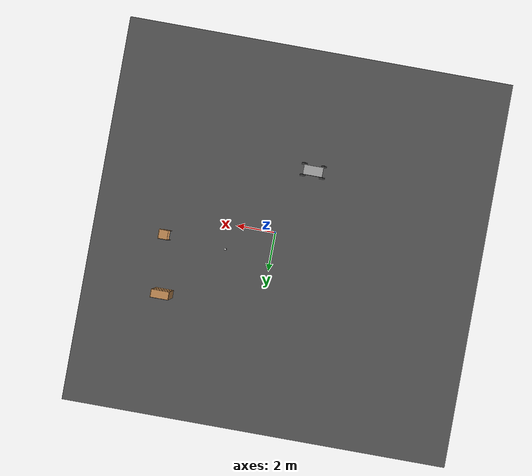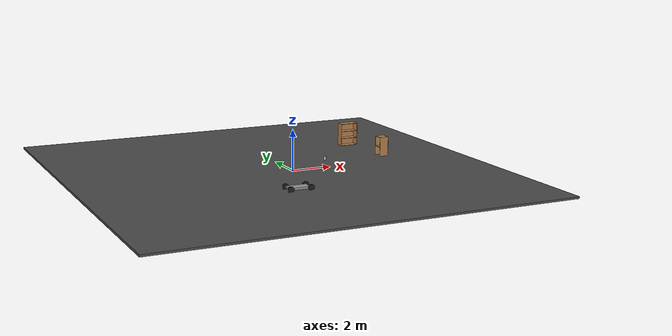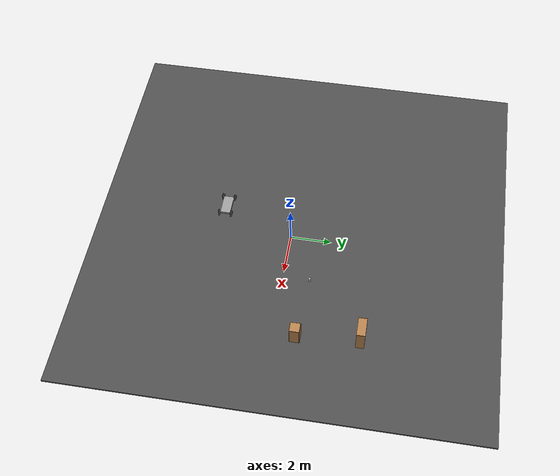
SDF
<sdf version="1.5">
 <world name="default">
  <physics type="ode">
   <max_step_size>0.0002</max_step_size>
   <real_time_factor>1</real_time_factor>
   <real_time_update_rate>5000</real_time_update_rate>
   <gravity>0 0 -9.81</gravity>
   <ode>
    <solver><type>quick</type><iters>50</iters><sor>1.3</sor></solver>
    <constraints>
     <cfm>0.0</cfm>
     <erp>0.2</erp>
     <contact_max_correcting_vel>10.0</contact_max_correcting_vel>
     <contact_surface_layer>0.001</contact_surface_layer>
    </constraints>
   </ode>
  </physics>
  <scene><sky><clouds><speed>12</speed></clouds></sky></scene>
  <include><uri>model://sun</uri></include>
  <model name="asphalt_plane">
   <static>1</static>
   <link name="link">
    <collision name="collision"><geometry><box><size>20 20 0.1</size></box></geometry></collision>
    <visual name="visual">
     <cast_shadows>0</cast_shadows>
     <geometry><box><size>20 20 0.1</size></box></geometry>
     <material>
      <script>
       <uri>model://asphalt_plane/materials/scripts</uri>
       <uri>model://asphalt_plane/materials/textures</uri>
       <name>vrc/asphalt</name>
      </script>
     </material>
    </visual>
   </link>
   <pose>-0.699775 0.359474 0 0 -0 0</pose>
  </model>
  <model name="beer">
   <link name="link">
    <pose>0 0 0.115 0 -0 0</pose>
    <inertial>
     <mass>0.39</mass>
     <inertia><ixx>0.00058</ixx><ixy>0</ixy><ixz>0</ixz><iyy>0.00058</iyy><iyz>0</iyz><izz>0.00019</izz></inertia>
    </inertial>
    <collision name="collision">
     <geometry><cylinder><radius>0.055</radius><length>0.23</length></cylinder></geometry>
    </collision>
    <visual name="visual">
     <geometry><cylinder><radius>0.055</radius><length>0.23</length></cylinder></geometry>
     <material>
      <script>
       <uri>model://beer/materials/scripts</uri>
       <uri>model://beer/materials/textures</uri>
       <name>Beer/Diffuse</name>
      </script>
     </material>
    </visual>
   </link>
   <pose>2.36586 1.28775 0 0 -0 0</pose>
  </model>
  <model name="bookshelf">
   <static>1</static>
   <link name="link">
    <inertial><mass>1</mass></inertial>
    <collision name="back">
     <pose>0 0.005 0.6 0 -0 0</pose>
     <geometry><box><size>0.9 0.01 1.2</size></box></geometry>
    </collision>
    <visual name="visual1">
     <pose>0 0.005 0.6 0 -0 0</pose>
     <geometry><box><size>0.9 0.01 1.2</size></box></geometry>
     <material>
      <script><uri>file://media/materials/scripts/gazebo.material</uri><name>Gazebo/Wood</name></script>
     </material>
    </visual>
    <collision name="left_side">
     <pose>0.45 -0.195 0.6 0 -0 0</pose>
     <geometry><box><size>0.02 0.4 1.2</size></box></geometry>
    </collision>
    <visual name="visual2">
     <pose>0.45 -0.195 0.6 0 -0 0</pose>
     <geometry><box><size>0.02 0.4 1.2</size></box></geometry>
     <material>
      <script><uri>file://media/materials/scripts/gazebo.material</uri><name>Gazebo/Wood</name></script>
     </material>
    </visual>
    <collision name="right_side">
     <pose>-0.45 -0.195 0.6 0 -0 0</pose>
     <geometry><box><size>0.02 0.4 1.2</size></box></geometry>
    </collision>
    <visual name="visual3">
     <pose>-0.45 -0.195 0.6 0 -0 0</pose>
     <geometry><box><size>0.02 0.4 1.2</size></box></geometry>
     <material>
      <script><uri>file://media/materials/scripts/gazebo.material</uri><name>Gazebo/Wood</name></script>
     </material>
    </visual>
    <collision name="bottom">
     <pose>0 -0.195 0.03 0 -0 0</pose>
     <geometry><box><size>0.88 0.4 0.06</size></box></geometry>
    </collision>
    <visual name="visual4">
     <pose>0 -0.195 0.03 0 -0 0</pose>
     <geometry><box><size>0.88 0.4 0.06</size></box></geometry>
     <material>
      <script><uri>file://media/materials/scripts/gazebo.material</uri><name>Gazebo/Wood</name></script>
     </material>
    </visual>
    <collision name="top">
     <pose>0 -0.195 1.19 0 -0 0</pose>
     <geometry><box><size>0.88 0.4 0.02</size></box></geometry>
    </collision>
    <visual name="visual5">
     <pose>0 -0.195 1.19 0 -0 0</pose>
     <geometry><box><size>0.88 0.4 0.02</size></box></geometry>
     <material>
      <script><uri>file://media/materials/scripts/gazebo.material</uri><name>Gazebo/Wood</name></script>
     </material>
    </visual>
    <collision name="low_shelf">
     <pose>0 -0.195 0.43 0 -0 0</pose>
     <geometry><box><size>0.88 0.4 0.02</size></box></geometry>
    </collision>
    <visual name="visual6">
     <pose>0 -0.195 0.43 0 -0 0</pose>
     <geometry><box><size>0.88 0.4 0.02</size></box></geometry>
     <material>
      <script><uri>file://media/materials/scripts/gazebo.material</uri><name>Gazebo/Wood</name></script>
     </material>
    </visual>
    <collision name="high_shelf">
     <pose>0 -0.195 0.8 0 -0 0</pose>
     <geometry><box><size>0.88 0.4 0.02</size></box></geometry>
    </collision>
    <visual name="visual7">
     <pose>0 -0.195 0.8 0 -0 0</pose>
     <geometry><box><size>0.88 0.4 0.02</size></box></geometry>
     <material>
      <script><uri>file://media/materials/scripts/gazebo.material</uri><name>Gazebo/Wood</name></script>
     </material>
    </visual>
   </link>
   <pose>5.07534 4.23526 0 0 -0 0</pose>
  </model>
  <model name="cabinet">
   <static>1</static>
   <link name="cabinet_bottom_plate">
    <inertial>
     <pose>0 0 -1 0 -0 0</pose>
     <inertia><ixx>2.05</ixx><ixy>0</ixy><ixz>0</ixz><iyy>2.05</iyy><iyz>0</iyz><izz>2.05</izz></inertia>
     <mass>25</mass>
    </inertial>
    <collision name="cabinet_bottom_plate_geom">
     <pose>0 0 0.01 0 -0 0</pose>
     <geometry><box><size>0.45 0.45 0.02</size></box></geometry>
    </collision>
    <visual name="cabinet_bottom_plate_geom_visual">
     <pose>0 0 0.01 0 -0 0</pose>
     <geometry><box><size>0.45 0.45 0.02</size></box></geometry>
     <material>
      <script><uri>file://media/materials/scripts/gazebo.material</uri><name>Gazebo/Wood</name></script>
     </material>
    </visual>
    <collision name="cabinet_bottom_plate_geom_cabinet_back_plate">
     <pose>0.235 0 0.51 0 -0 0</pose>
     <geometry><box><size>0.02 0.45 1.02</size></box></geometry>
    </collision>
    <visual name="cabinet_bottom_plate_geom_cabinet_back_plate_visual">
     <pose>0.235 0 0.51 0 -0 0</pose>
     <geometry><box><size>0.02 0.45 1.02</size></box></geometry>
     <material>
      <script><uri>file://media/materials/scripts/gazebo.material</uri><name>Gazebo/Wood</name></script>
     </material>
    </visual>
    <collision name="cabinet_bottom_plate_geom_cabinet_left_plate">
     <pose>0 0.235 0.51 0 -0 0</pose>
     <geometry><box><size>0.45 0.02 1.02</size></box></geometry>
    </collision>
    <visual name="cabinet_bottom_plate_geom_cabinet_left_plate_visual">
     <pose>0 0.235 0.51 0 -0 0</pose>
     <geometry><box><size>0.45 0.02 1.02</size></box></geometry>
     <material>
      <script><uri>file://media/materials/scripts/gazebo.material</uri><name>Gazebo/Wood</name></script>
     </material>
    </visual>
    <collision name="cabinet_bottom_plate_geom_cabinet_middle_plate">
     <pose>0 0 0.51 0 -0 0</pose>
     <geometry><box><size>0.45 0.45 0.02</size></box></geometry>
    </collision>
    <visual name="cabinet_bottom_plate_geom_cabinet_middle_plate_visual">
     <pose>0 0 0.51 0 -0 0</pose>
     <geometry><box><size>0.45 0.45 0.02</size></box></geometry>
     <material>
      <script><uri>file://media/materials/scripts/gazebo.material</uri><name>Gazebo/Wood</name></script>
     </material>
    </visual>
    <collision name="cabinet_bottom_plate_geom_cabinet_right_plate">
     <pose>0 -0.235 0.51 0 -0 0</pose>
     <geometry><box><size>0.45 0.02 1.02</size></box></geometry>
    </collision>
    <visual name="cabinet_bottom_plate_geom_cabinet_right_plate_visual">
     <pose>0 -0.235 0.51 0 -0 0</pose>
     <geometry><box><size>0.45 0.02 1.02</size></box></geometry>
     <material>
      <script><uri>file://media/materials/scripts/gazebo.material</uri><name>Gazebo/Wood</name></script>
     </material>
    </visual>
    <collision name="cabinet_bottom_plate_geom_cabinet_top_plate">
     <pose>0 0 1.01 0 -0 0</pose>
     <geometry><box><size>0.45 0.45 0.02</size></box></geometry>
    </collision>
    <visual name="cabinet_bottom_plate_geom_cabinet_top_plate_visual">
     <pose>0 0 1.01 0 -0 0</pose>
     <geometry><box><size>0.45 0.45 0.02</size></box></geometry>
     <material>
      <script><uri>file://media/materials/scripts/gazebo.material</uri><name>Gazebo/Wood</name></script>
     </material>
    </visual>
   </link>
   <pose>5.46205 1.0817 0 0 -0 0</pose>
  </model>
  <model name="cart_front_steer">
   <link name="chassis">
    <pose>0 0 0.15 0 -0 0</pose>
    <inertial>
     <pose>0.1 0 0 0 -0 0</pose>
     <mass>10</mass>
     <inertia>
      <ixx>0.216667</ixx>
      <iyy>0.841667</iyy>
      <izz>1.04167</izz>
      <ixy>0</ixy>
      <ixz>0</ixz>
      <iyz>0</iyz>
     </inertia>
    </inertial>
    <collision name="collision"><geometry><box><size>1 0.5 0.1</size></box></geometry></collision>
    <visual name="visual">
     <geometry><box><size>1 0.5 0.1</size></box></geometry>
     <material>
      <script><uri>file://media/materials/scripts/gazebo.material</uri><name>Gazebo/Grey</name></script>
     </material>
    </visual>
   </link>
   <link name="wheel_front_left">
    <pose>0.5 0.298 0.15 -1.5708 -0.087266 0</pose>
    <inertial>
     <mass>0.5</mass>
     <inertia>
      <ixx>0.00307917</ixx>
      <iyy>0.00307917</iyy>
      <izz>0.005625</izz>
      <ixy>0</ixy>
      <ixz>0</ixz>
      <iyz>0</iyz>
     </inertia>
    </inertial>
    <collision name="collision">
     <geometry><cylinder><radius>0.15</radius><length>0.08</length></cylinder></geometry>
    </collision>
    <visual name="visual">
     <geometry><cylinder><radius>0.15</radius><length>0.08</length></cylinder></geometry>
     <material>
      <script><uri>file://media/materials/scripts/gazebo.material</uri><name>Gazebo/Black</name></script>
     </material>
    </visual>
   </link>
   <joint name="wheel_front_left_steer_spin" type="universal">
    <parent>chassis</parent>
    <child>wheel_front_left</child>
    <axis>
     <xyz>0 -1 0</xyz>
     <limit><lower>-0.610865</lower><upper>0.610865</upper></limit>
     <dynamics><spring_reference>0</spring_reference><spring_stiffness>0</spring_stiffness></dynamics>
    </axis>
    <axis2>
     <xyz>0 0 1</xyz>
     <limit><upper>1e+16</upper><lower>-1e+16</lower></limit>
     <dynamics><spring_reference>0</spring_reference><spring_stiffness>0</spring_stiffness></dynamics>
    </axis2>
   </joint>
   <link name="wheel_front_right">
    <pose>0.5 -0.298 0.15 -1.5708 -0.087266 0</pose>
    <inertial>
     <mass>0.5</mass>
     <inertia>
      <ixx>0.00307917</ixx>
      <iyy>0.00307917</iyy>
      <izz>0.005625</izz>
      <ixy>0</ixy>
      <ixz>0</ixz>
      <iyz>0</iyz>
     </inertia>
    </inertial>
    <collision name="collision">
     <geometry><cylinder><radius>0.15</radius><length>0.08</length></cylinder></geometry>
    </collision>
    <visual name="visual">
     <geometry><cylinder><radius>0.15</radius><length>0.08</length></cylinder></geometry>
     <material>
      <script><uri>file://media/materials/scripts/gazebo.material</uri><name>Gazebo/Black</name></script>
     </material>
    </visual>
   </link>
   <joint name="wheel_front_right_steer_spin" type="universal">
    <parent>chassis</parent>
    <child>wheel_front_right</child>
    <axis>
     <xyz>0 -1 0</xyz>
     <limit><lower>-0.610865</lower><upper>0.610865</upper></limit>
     <dynamics><spring_reference>0</spring_reference><spring_stiffness>0</spring_stiffness></dynamics>
    </axis>
    <axis2>
     <xyz>0 0 1</xyz>
     <limit><upper>1e+16</upper><lower>-1e+16</lower></limit>
     <dynamics><spring_reference>0</spring_reference><spring_stiffness>0</spring_stiffness></dynamics>
    </axis2>
   </joint>
   <link name="wheel_rear_left">
    <pose>-0.5 0.298 0.15 -1.5708 0 0</pose>
    <inertial>
     <mass>0.5</mass>
     <inertia>
      <ixx>0.00307917</ixx>
      <iyy>0.00307917</iyy>
      <izz>0.005625</izz>
      <ixy>0</ixy>
      <ixz>0</ixz>
      <iyz>0</iyz>
     </inertia>
    </inertial>
    <collision name="collision">
     <geometry><cylinder><radius>0.15</radius><length>0.08</length></cylinder></geometry>
    </collision>
    <visual name="visual">
     <geometry><cylinder><radius>0.15</radius><length>0.08</length></cylinder></geometry>
     <material>
      <script><uri>file://media/materials/scripts/gazebo.material</uri><name>Gazebo/Black</name></script>
     </material>
    </visual>
   </link>
   <joint name="wheel_rear_left_spin" type="revolute">
    <parent>chassis</parent>
    <child>wheel_rear_left</child>
    <axis>
     <xyz>0 0 1</xyz>
     <limit><lower>-1e+16</lower><upper>1e+16</upper></limit>
     <dynamics><spring_reference>0</spring_reference><spring_stiffness>0</spring_stiffness></dynamics>
    </axis>
   </joint>
   <link name="wheel_rear_right">
    <pose>-0.5 -0.298 0.15 -1.5708 0 0</pose>
    <inertial>
     <mass>0.5</mass>
     <inertia>
      <ixx>0.00307917</ixx>
      <iyy>0.00307917</iyy>
      <izz>0.005625</izz>
      <ixy>0</ixy>
      <ixz>0</ixz>
      <iyz>0</iyz>
     </inertia>
    </inertial>
    <collision name="collision">
     <geometry><cylinder><radius>0.15</radius><length>0.08</length></cylinder></geometry>
    </collision>
    <visual name="visual">
     <geometry><cylinder><radius>0.15</radius><length>0.08</length></cylinder></geometry>
     <material>
      <script><uri>file://media/materials/scripts/gazebo.material</uri><name>Gazebo/Black</name></script>
     </material>
    </visual>
   </link>
   <joint name="wheel_rear_right_spin" type="revolute">
    <parent>chassis</parent>
    <child>wheel_rear_right</child>
    <axis>
     <xyz>0 0 1</xyz>
     <limit><lower>-1e+16</lower><upper>1e+16</upper></limit>
     <dynamics><spring_reference>0</spring_reference><spring_stiffness>0</spring_stiffness></dynamics>
    </axis>
   </joint>
   <pose>-1.35437 -3.46482 0 0 -0 0</pose>
  </model>
 </world>
</sdf>
